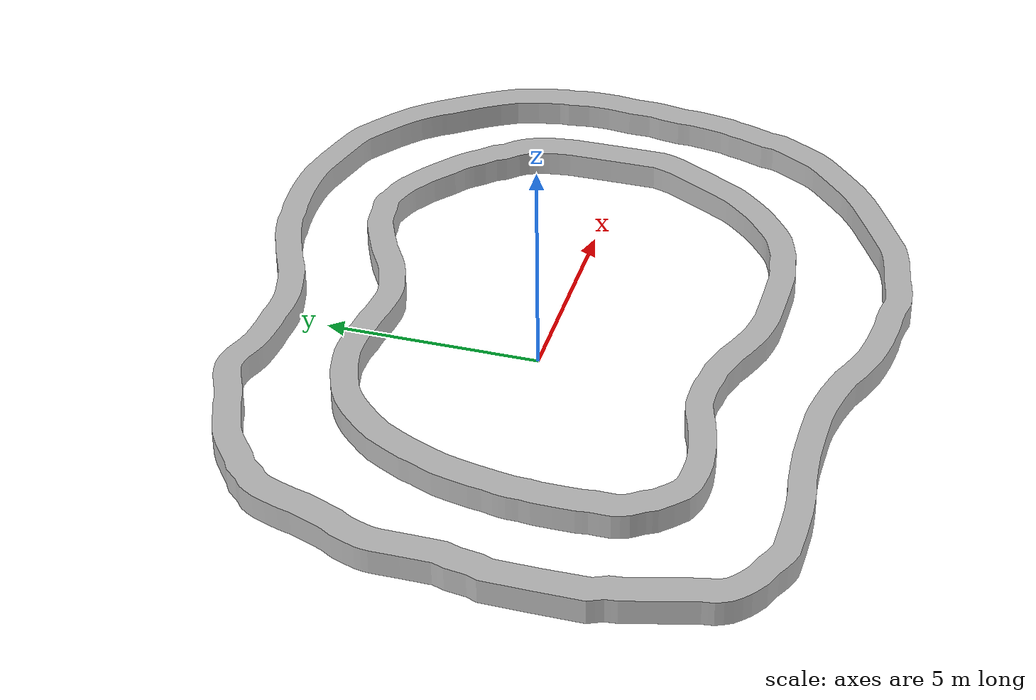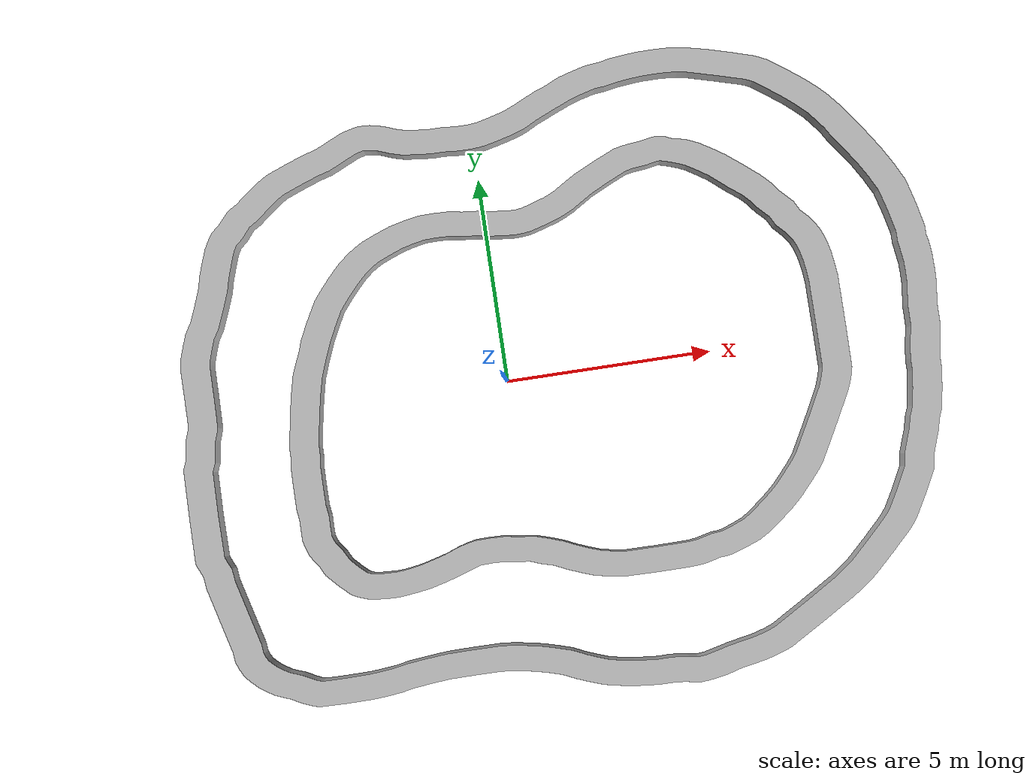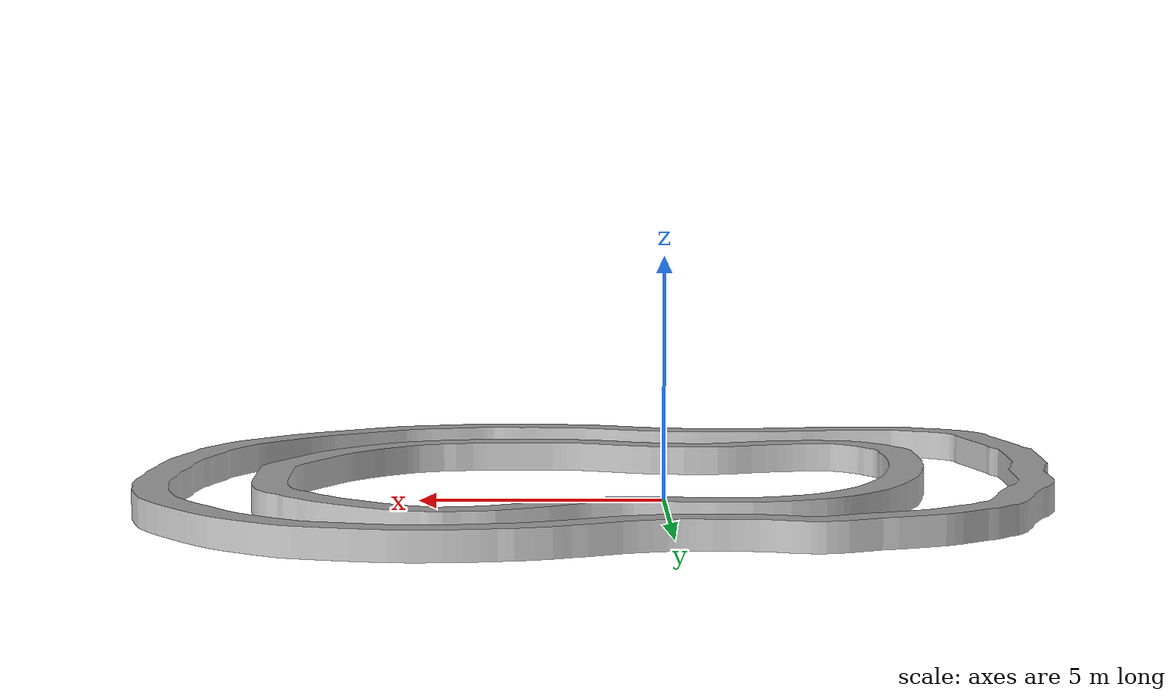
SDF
<?xml version='1.0'?>
<sdf version='1.6'>
  <model name='racingtrack_logo'>
    <link name='link_1'>
         <visual name='visual'>
        <pose frame=''>0.0 0.0 0 0 0 -1.57</pose>
        <geometry>
          <mesh>
            <uri>model://racingtrack_logo/meshes/race_track.stl</uri>
            <scale>0.08 0.08 0.08</scale>
          </mesh>
        </geometry>
        <cast_shadows>1</cast_shadows>
        <transparency>0</transparency>
      </visual>
      <collision name='collision'>
        <laser_retro>0</laser_retro>
        <max_contacts>10</max_contacts>
        <pose frame=''>0.0 0.0 0 0 0 -1.57</pose>
        <geometry>
          <mesh>
            <uri>model://racingtrack_logo/meshes/race_track.stl</uri>
            <scale>0.08 0.08 0.08</scale>
          </mesh>
        </geometry>
     </collision>
    </link>

    <static>1</static>
    <allow_auto_disable>1</allow_auto_disable>
  </model>
</sdf>
